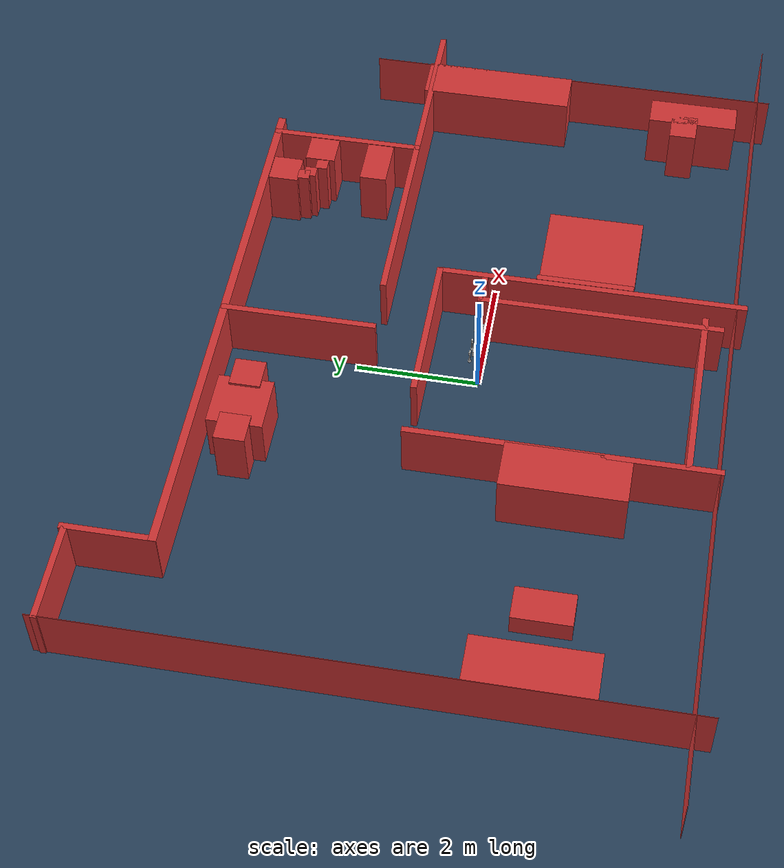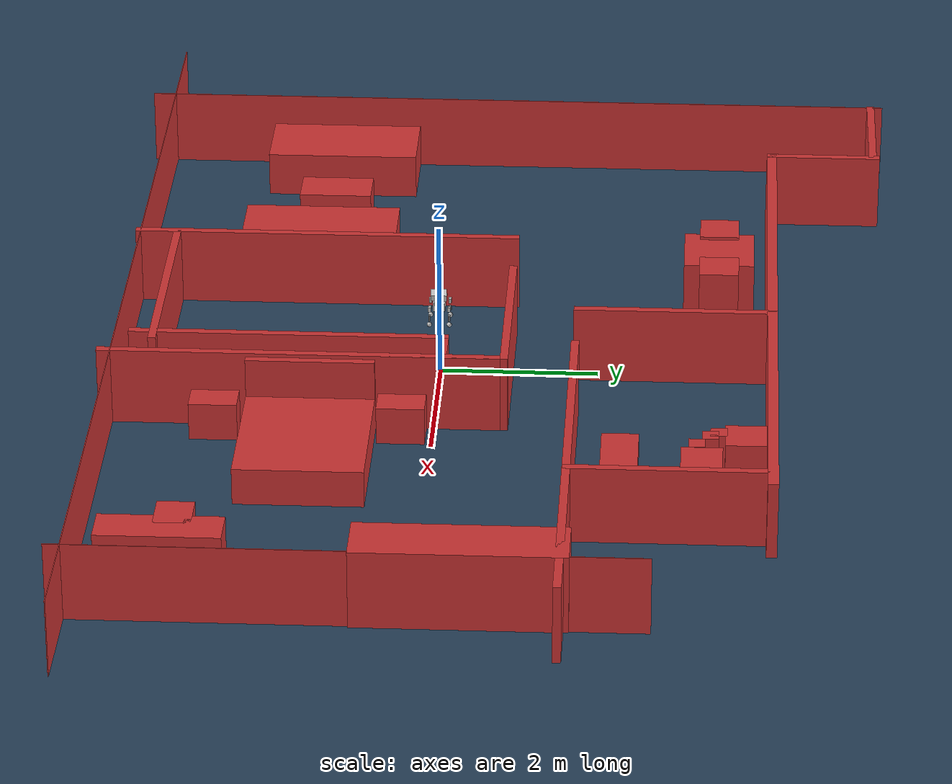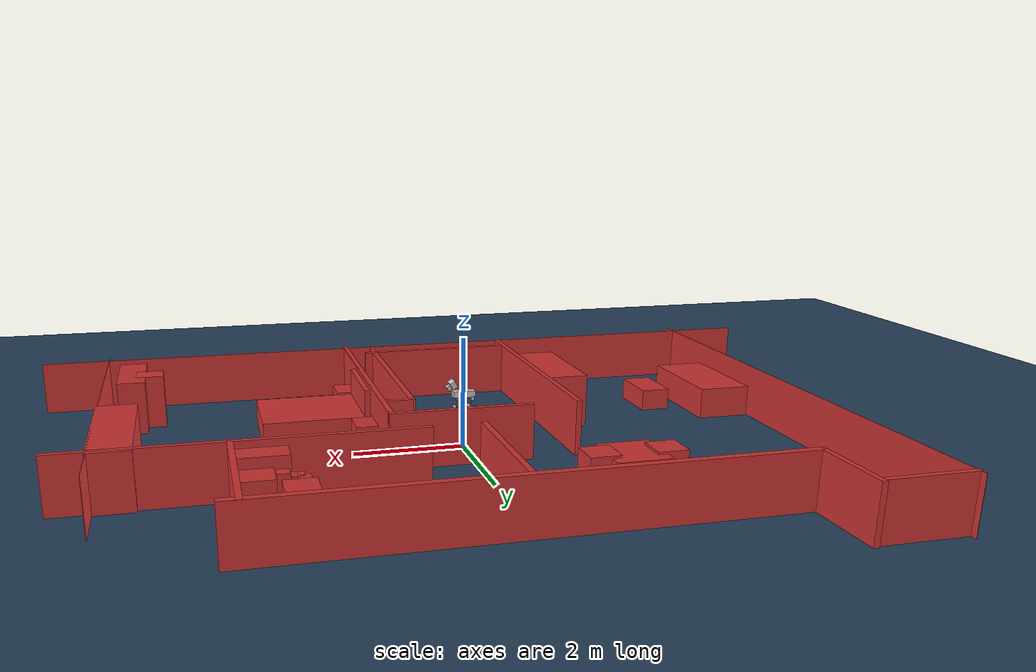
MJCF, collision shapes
<mujoco model="XXG scene">
  <include file="xxg.xml" />

  <statistic center="0 0 0.1" extent="0.8" />

  <visual>
    <headlight diffuse="0.6 0.6 0.6" ambient="0.3 0.3 0.3" specular="0 0 0" />
    <rgba haze="0.15 0.25 0.35 1" />
    <global azimuth="-130" elevation="-20" />
    <map znear="0.01" zfar="100"/>
  </visual>

  <asset>
    <texture type="skybox" builtin="gradient" rgb1="0.3 0.5 0.7" rgb2="0 0 0" width="512" height="3072" />
    <texture type="2d" name="groundplane" builtin="checker" mark="edge" rgb1="0.2 0.3 0.4" rgb2="0.1 0.2 0.3" markrgb="0.8 0.8 0.8" width="300" height="300" />
    <material name="groundplane" texture="groundplane" texuniform="true" texrepeat="5 5" reflectance="0.2" />
  <hfield name="perlin_hfield" size="1.0 0.75 0.2 0.2" file="../height_field.png" /><hfield name="image_hfield" size="1.0 1.0 0.02 0.1" file="../unitree_hfield.png" /></asset>

  <worldbody>
    <light pos="0 0 1.5" dir="0 0 -1" directional="true" />
    <geom name="floor" pos="0 0.0 0.01" size="0 0 0.05" type="plane" material="groundplane" />
<geom name="phs_Cube" type="box" size="0.005 5.0 0.5" pos="-6.03 0.7 0.5" quat="1.0 0.0 0.0 0.0" rgba="0.8 0.2 0.2 1"/>
<geom name="phs_Cube2" type="box" size="0.005 7.5 0.5" pos="0.07 -4.0 0.5" quat="0.707107 0.0 0.0 0.707107" rgba="0.8 0.2 0.2 1"/>
<geom name="phs_Cube3" type="box" size="0.005 3.5 0.5" pos="6.3 -0.7 0.5" quat="1.0 0.0 0.0 0.0" rgba="0.8 0.2 0.2 1"/>
<geom name="phs_Cube4" type="box" size="0.005 2.5 0.5" pos="1.53 -1.58 0.5" quat="1.0 0.0 0.0 0.0" rgba="0.8 0.2 0.2 1"/>
<geom name="phs_Cube5" type="box" size="0.05 3.0 0.5" pos="3.99 1.74 0.5" quat="0.707107 0.0 0.0 0.707107" rgba="0.8 0.2 0.2 1"/>
<geom name="phs_Cube6" type="box" size="0.05 1.275 0.5" pos="0.26 0.88 0.5" quat="0.707107 0.0 0.0 0.707107" rgba="0.8 0.2 0.2 1"/>
<geom name="phs_Cube7" type="box" size="0.05 2.5 0.5" pos="1.49 -1.67 0.5" quat="1.0 0.0 0.0 -0.0" rgba="0.8 0.2 0.2 1"/>
<geom name="phs_Cube8" type="box" size="0.05 2.0 0.5" pos="0.97 -1.83 0.5" quat="1.0 0.0 0.0 0.0" rgba="0.8 0.2 0.2 1"/>
<geom name="phs_Cube9" type="box" size="0.05 0.25 0.5" pos="1.21 0.12 0.5" quat="0.707107 0.0 0.0 -0.707107" rgba="0.8 0.2 0.2 1"/>
<geom name="phs_Cube10" type="box" size="0.05 1.5 0.5" pos="-0.33 -3.52 0.5" quat="0.707107 0.0 0.0 -0.707107" rgba="0.8 0.2 0.2 1"/>
<geom name="phs_Cube11" type="box" size="0.05 2.49375 0.5" pos="-1.84 -1.57 0.5" quat="1.0 0.0 0.0 0.0" rgba="0.8 0.2 0.2 1"/>
<geom name="phs_Cube12" type="box" size="0.065 4.5 0.5" pos="0.005 4.19 0.5" quat="0.707107 0.0 0.0 0.707107" rgba="0.8 0.2 0.2 1"/>
<geom name="phs_Cube13" type="box" size="0.05 1.275 0.5" pos="0.12 2.97 0.5" quat="1.0 0.0 0.0 -0.0" rgba="0.8 0.2 0.2 1"/>
<geom name="phs_Cube14" type="box" size="0.05 1.275 0.5" pos="4.19 2.97 0.5" quat="1.0 0.0 0.0 0.0" rgba="0.8 0.2 0.2 1"/>
<geom name="phs_Cube15" type="box" size="0.35 1.275 0.5" pos="5.98 0.58 0.5" quat="1.0 0.0 0.0 0.0" rgba="0.8 0.2 0.2 1"/>
<geom name="phs_Cube16" type="box" size="0.05 0.75 0.5" pos="-4.45 4.88 0.5" quat="1.0 0.0 0.0 0.0" rgba="0.8 0.2 0.2 1"/>
<geom name="phs_Cube17" type="box" size="0.05 0.8 0.5" pos="-5.26 5.54 0.5" quat="0.707107 0.0 0.0 0.707107" rgba="0.8 0.2 0.2 1"/>
<geom name="phs_Cube18" type="box" size="0.4 1.0 0.5" pos="-2.22 -1.68 0.5" quat="1.0 0.0 0.0 0.0" rgba="0.8 0.2 0.2 1"/>
<geom name="phs_Cube19" type="box" size="0.275 0.475 0.2" pos="-4.31 -1.65 0.27" quat="1.0 0.0 0.0 0.0" rgba="0.8 0.2 0.2 1"/>
<geom name="phs_Cube20" type="box" size="0.5 1.0 0.3" pos="-5.53 -1.63 0.28" quat="1.0 0.0 0.0 0.0" rgba="0.8 0.2 0.2 1"/>
<geom name="phs_Cube21" type="box" size="0.45 0.45 0.45" pos="-1.69 3.51 0.5" quat="1.0 0.0 0.0 0.0" rgba="0.8 0.2 0.2 1"/>
<geom name="phs_Cube22" type="box" size="0.25 0.25 0.5" pos="-2.23 3.51 0.49" quat="1.0 0.0 0.0 0.0" rgba="0.8 0.2 0.2 1"/>
<geom name="phs_Cube23" type="box" size="0.25 0.25 0.5" pos="-1.15 3.51 0.49" quat="1.0 0.0 0.0 0.0" rgba="0.8 0.2 0.2 1"/>
<geom name="phs_Cube24" type="box" size="0.25 0.25 0.5" pos="3.33 3.87 0.49" quat="1.0 0.0 0.0 0.0" rgba="0.8 0.2 0.2 1"/>
<geom name="phs_Cube25" type="box" size="0.25 0.25 0.5" pos="3.89 3.34 0.49" quat="1.0 0.0 0.0 0.0" rgba="0.8 0.2 0.2 1"/>
<geom name="phs_Cube26" type="box" size="0.1 0.1 0.5" pos="3.53 3.28 0.49" quat="1.0 0.0 0.0 0.0" rgba="0.8 0.2 0.2 1"/>
<geom name="phs_Cube27" type="box" size="0.1 0.1 0.5" pos="3.33 3.44 0.49" quat="1.0 0.0 0.0 0.0" rgba="0.8 0.2 0.2 1"/>
<geom name="phs_Cube28" type="box" size="0.1 0.1 0.5" pos="3.25 3.54 0.49" quat="1.0 0.0 0.0 0.0" rgba="0.8 0.2 0.2 1"/>
<geom name="phs_Cube29" type="box" size="0.4 0.225 0.5" pos="3.74 2.36 0.49" quat="1.0 0.0 0.0 0.0" rgba="0.8 0.2 0.2 1"/>
<geom name="phs_Cube30" type="box" size="1.0 0.8 0.25" pos="2.52 -1.51 0.22" quat="1.0 0.0 0.0 0.0" rgba="0.8 0.2 0.2 1"/>
<geom name="phs_Cube31" type="box" size="0.05 0.8 0.25" pos="1.62 -1.51 0.72" quat="1.0 0.0 0.0 0.0" rgba="0.8 0.2 0.2 1"/>
<geom name="phs_Cube32" type="box" size="0.25 0.3 0.25" pos="1.68 -0.38 0.23" quat="1.0 0.0 0.0 0.0" rgba="0.8 0.2 0.2 1"/>
<geom name="phs_Cube33" type="box" size="0.25 0.3 0.25" pos="1.68 -2.7 0.23" quat="1.0 0.0 0.0 0.0" rgba="0.8 0.2 0.2 1"/>
<geom name="phs_Cube34" type="box" size="0.25 0.225 0.5" pos="5.48 -2.77 0.49" quat="1.0 0.0 0.0 0.0" rgba="0.8 0.2 0.2 1"/>
<geom name="phs_Cube35" type="box" size="0.25 0.75 0.5" pos="5.81 -2.91 0.49" quat="1.0 0.0 0.0 0.0" rgba="0.8 0.2 0.2 1"/>
    </worldbody>
</mujoco>

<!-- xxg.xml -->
<mujoco model="DOG">
  <compiler angle="radian" meshdir="assets/"/>

  <asset>
    <mesh name="BASE_LINK" file="BASE_LINK.STL"/>
    <mesh name="FBL_ABAD_LINK" file="FBL_ABAD_LINK.STL"/>
    <mesh name="FBL_HIP_LINK" file="FBL_HIP_LINK.STL"/>
    <mesh name="FBL_KNEE_LINK" file="FBL_KNEE_LINK.STL"/>
    <mesh name="FBL_FOOT_LINK" file="FBL_FOOT_LINK.STL"/>
    <mesh name="FAR_ABAD_LINK" file="FAR_ABAD_LINK.STL"/>
    <mesh name="FAR_HIP_LINK" file="FAR_HIP_LINK.STL"/>
    <mesh name="FAR_KNEE_LINK" file="FAR_KNEE_LINK.STL"/>
    <mesh name="FAR_FOOT_LINK" file="FAR_FOOT_LINK.STL"/>
    <mesh name="RAR_ABAD_LINK" file="RAR_ABAD_LINK.STL"/>
    <mesh name="RAR_HIP_LINK" file="RAR_HIP_LINK.STL"/>
    <mesh name="RAR_KNEE_LINK" file="RAR_KNEE_LINK.STL"/>
    <mesh name="RAR_FOOT_LINK" file="RAR_FOOT_LINK.STL"/>
    <mesh name="RBL_ABAD_LINK" file="RBL_ABAD_LINK.STL"/>
    <mesh name="RBL_HIP_LINK" file="RBL_HIP_LINK.STL"/>
    <mesh name="RBL_KNEE_LINK" file="RBL_KNEE_LINK.STL"/>
    <mesh name="RBL_FOOT_LINK" file="RBL_FOOT_LINK.STL"/>
    <mesh name="HEAD1_LINK" file="HEAD1_LINK.STL"/>
    <mesh name="HEAD2_LINK" file="HEAD2_LINK.STL"/>
  </asset>

  <worldbody>
    <body name="BASE_LINK" pos="0 0 1.0">
      <inertial pos="1.8341473e-02 -1.9475667e-04 1.6646741e-02" quat="-0 0 0 1" mass="5.6608325" diaginertia="0.039340224 8.8059075e-02 7.6312096e-02"/>
      <freejoint />
      <site name="imu" pos="0.0 0 0.0" />
    <!-- add livox_imu -->
    <site name="livox_imu" pos="0.18 0.0 0.3" quat="1.0 0.0 0.0 0.0"/>
    <!-- add camera imu -->
    <site name="camera_imu" pos="0.18 0.0 0.3" quat="1.0 0.0 0.0 0.0"/>

    <geom type="mesh" contype="0" conaffinity="0" group="1" density="0" rgba="0.75294 0.75294 0.75294 1.0" mesh="BASE_LINK"/>
    <geom size="0.2 0.075 0.055" type="box" rgba="0.75294 0.75294 0.75294 0.0"/>
    <geom pos="0.1775 0 0.1164" quat="0.965249 0 0.26133 0" type="mesh" contype="0" conaffinity="0" group="1" density="0" rgba="0.75294 0.75294 0.75294 1.0" mesh="HEAD1_LINK"/>
    <geom pos="0.1775 0 0.1164" quat="0.965249 0 0.26133 0" type="mesh" contype="0" conaffinity="0" group="1" density="0" rgba="0.75294 0.75294 0.75294 1.0" mesh="HEAD2_LINK"/>
    <geom size="0.05 0.1 0.06" pos="0.204181 0 0.181884" quat="0.965249 0 0.26133 0" type="box" rgba="0.75294 0.75294 0.75294 0.0"/>
    <geom size="0.035 0.05 0.04" pos="0.27432 0 0.123528" quat="0.965249 0 0.26133 0" type="box" rgba="0.75294 0.75294 0.75294 0.0"/>
    <body name="FBL_ABAD_LINK" pos="0.1305 0.0377 0">
      <inertial pos="-0.0258732 0.00474653 0" quat="0.446156 0.446156 0.548585 0.548585" mass="0.29007" diaginertia="0.000234429 0.000228281 4.61129e-05"/>
      <joint name="FBL_ABAD_JOINT" pos="0 0 0" axis="1 0 0" range="-0.4887 0.4887" actuatorfrcrange="-20 20"/>
      <geom type="mesh" contype="0" conaffinity="0" group="1" density="0" rgba="0.75294 0.75294 0.75294 1.0" mesh="FBL_ABAD_LINK"/>
      <body name="FBL_HIP_LINK">
        <inertial pos="0 0.0475203 -0.0615104" quat="0.992663 0.120643 7.95638e-06 -0.00808508" mass="0.698577" diaginertia="0.00315469 0.00310141 0.000383698"/>
        <joint name="FBL_HIP_JOINT" pos="0 0 0" axis="0 1 0" range="-2.967 2.967" actuatorfrcrange="-20 20"/>
        <geom type="mesh" contype="0" conaffinity="0" group="1" density="0" rgba="0.75294 0.75294 0.75294 1.0" mesh="FBL_HIP_LINK"/>
        <geom size="0.025 0.015 0.03" pos="-0.01 0.085 -0.06" type="box" rgba="0.75294 0.75294 0.75294 1.0"/>
        <body name="FBL_KNEE_LINK" pos="0 0.08786 -0.1307">
          <inertial pos="0.00368489 0.0063771 -0.0635258" quat="0.608469 0.0177668 -0.0332576 0.792681" mass="0.288584" diaginertia="0.00161384 0.00159203 5.37708e-05"/>
          <joint name="FBL_KNEE_JOINT" pos="0 0 0" axis="0 1 0" range="-2.723 2.702" actuatorfrcrange="-20 20"/>
          <geom type="mesh" contype="0" conaffinity="0" group="1" density="0" rgba="0.49804 0.49804 0.49804 1.0" mesh="FBL_KNEE_LINK"/>
          <geom size="0.015 0.01 0.045" pos="0 0 -0.05" quat="0.994493 0 0.104807 0" type="box" rgba="0.49804 0.49804 0.49804 1.0"/>
          <geom pos="0 0 -0.1425" type="mesh" contype="0" conaffinity="0" group="1" density="0" rgba="0.75294 0.75294 0.75294 1.0" mesh="FBL_FOOT_LINK"/>
          <geom size="0.03" pos="0 0 -0.1425" quat="0.707388 0.706825 0 0" rgba="0.75294 0.75294 0.75294 1.0"/>
        </body>
      </body>
    </body>
    <body name="FAR_ABAD_LINK" pos="0.1305 -0.0377 0">
      <inertial pos="-0.0258732 -0.00474653 0" quat="0.548585 0.548585 0.446156 0.446156" mass="0.29007" diaginertia="0.000234429 0.000228281 4.61129e-05"/>
      <joint name="FAR_ABAD_JOINT" pos="0 0 0" axis="1 0 0" range="-0.4887 0.4887" actuatorfrcrange="-20 20"/>
      <geom type="mesh" contype="0" conaffinity="0" group="1" density="0" rgba="0.75294 0.75294 0.75294 1.0" mesh="FAR_ABAD_LINK"/>
      <body name="FAR_HIP_LINK">
        <inertial pos="0 -0.0475203 -0.0615104" quat="0.992663 -0.120643 7.95638e-06 0.00808508" mass="0.698577" diaginertia="0.00315469 0.00310141 0.000383698"/>
        <joint name="FAR_HIP_JOINT" pos="0 0 0" axis="0 1 0" range="-2.967 2.967" actuatorfrcrange="-20 20"/>
        <geom type="mesh" contype="0" conaffinity="0" group="1" density="0" rgba="0.75294 0.75294 0.75294 1.0" mesh="FAR_HIP_LINK"/>
        <geom size="0.025 0.015 0.03" pos="-0.01 -0.085 -0.06" type="box" rgba="0.75294 0.75294 0.75294 1.0"/>
        <body name="FAR_KNEE_LINK" pos="0 -0.08786 -0.1307">
          <inertial pos="0.00368489 -0.0063771 -0.0635258" quat="0.792681 -0.0332576 0.0177668 0.608469" mass="0.288584" diaginertia="0.00161384 0.00159203 5.37708e-05"/>
          <joint name="FAR_KNEE_JOINT" pos="0 0 0" axis="0 1 0" range="-2.723 2.702" actuatorfrcrange="-20 20"/>
          <geom type="mesh" contype="0" conaffinity="0" group="1" density="0" rgba="0.49804 0.49804 0.49804 1.0" mesh="FAR_KNEE_LINK"/>
          <geom size="0.015 0.01 0.045" pos="0 0 -0.05" quat="0.994493 0 0.104807 0" type="box" rgba="0.49804 0.49804 0.49804 1.0"/>
          <geom pos="0 0 -0.1425" type="mesh" contype="0" conaffinity="0" group="1" density="0" rgba="0.75294 0.75294 0.75294 1.0" mesh="FAR_FOOT_LINK"/>
          <geom size="0.03" pos="0 0 -0.1425" quat="0.707388 0.706825 0 0" rgba="0.75294 0.75294 0.75294 1.0"/>
        </body>
      </body>
    </body>
    <body name="RAR_ABAD_LINK" pos="-0.1305 -0.0377 0">
      <inertial pos="0.0258732 -0.00474653 0" quat="0.446156 0.446156 0.548585 0.548585" mass="0.29007" diaginertia="0.000234429 0.000228281 4.61129e-05"/>
      <joint name="RAR_ABAD_JOINT" pos="0 0 0" axis="1 0 0" range="-0.4887 0.4887" actuatorfrcrange="-20 20"/>
      <geom type="mesh" contype="0" conaffinity="0" group="1" density="0" rgba="0.75294 0.75294 0.75294 1.0" mesh="RAR_ABAD_LINK"/>
      <body name="RAR_HIP_LINK">
        <inertial pos="0 -0.0475203 -0.0615104" quat="0.992663 -0.120643 7.95638e-06 0.00808508" mass="0.698577" diaginertia="0.00315469 0.00310141 0.000383698"/>
        <joint name="RAR_HIP_JOINT" pos="0 0 0" axis="0 1 0" range="-2.967 2.967" actuatorfrcrange="-20 20"/>
        <geom type="mesh" contype="0" conaffinity="0" group="1" density="0" rgba="0.75294 0.75294 0.75294 1.0" mesh="RAR_HIP_LINK"/>
        <geom size="0.025 0.015 0.03" pos="0 -0.085 -0.06" type="box" rgba="0.75294 0.75294 0.75294 1.0"/>
        <body name="RAR_KNEE_LINK" pos="0 -0.08786 -0.1307">
          <inertial pos="0.00368489 -0.0063771 -0.0634925" quat="0.792566 -0.0333078 0.0177921 0.608615" mass="0.288584" diaginertia="0.0016124 0.00159058 5.37526e-05"/>
          <joint name="RAR_KNEE_JOINT" pos="0 0 0" axis="0 1 0" range="-2.723 2.702" actuatorfrcrange="-20 20"/>
          <geom type="mesh" contype="0" conaffinity="0" group="1" density="0" rgba="0.49804 0.49804 0.49804 1.0" mesh="RAR_KNEE_LINK"/>
          <geom size="0.015 0.01 0.045" pos="-0.01 0 -0.04" quat="0.930508 0 0.366273 0" type="box" rgba="0.49804 0.49804 0.49804 1.0"/>
          <geom pos="0 0 -0.1357" quat="1 0 0 0" type="mesh" contype="0" conaffinity="0" group="1" density="0" rgba="0.75294 0.75294 0.75294 1.0" mesh="RAR_FOOT_LINK"/>
          <geom size="0.03" pos="0 0 -0.1357" quat="0.707388 0.706825 0 0" rgba="0.75294 0.75294 0.75294 1.0"/>
        </body>
      </body>
    </body>
    <body name="RBL_ABAD_LINK" pos="-0.1305 0.0377 0">
      <inertial pos="0.0258732 0.00474653 0" quat="0.548585 0.548585 0.446156 0.446156" mass="0.29007" diaginertia="0.000234429 0.000228281 4.61129e-05"/>
      <joint name="RBL_ABAD_JOINT" pos="0 0 0" axis="1 0 0" range="-0.4887 0.4887" actuatorfrcrange="-20 20"/>
      <geom type="mesh" contype="0" conaffinity="0" group="1" density="0" rgba="0.75294 0.75294 0.75294 1.0" mesh="RBL_ABAD_LINK"/>
      <body name="RBL_HIP_LINK">
        <inertial pos="0 0.0475203 -0.0615104" quat="0.992663 0.120643 7.95638e-06 -0.00808508" mass="0.698577" diaginertia="0.00315469 0.00310141 0.000383698"/>
        <joint name="RBL_HIP_JOINT" pos="0 0 0" axis="0 1 0" range="-2.967 2.967" actuatorfrcrange="-20 20"/>
        <geom type="mesh" contype="0" conaffinity="0" group="1" density="0" rgba="0.75294 0.75294 0.75294 1.0" mesh="RBL_HIP_LINK"/>
        <geom size="0.025 0.015 0.03" pos="0 0.085 -0.06" type="box" rgba="0.75294 0.75294 0.75294 1.0"/>
        <body name="RBL_KNEE_LINK" pos="0 0.08786 -0.1307">
          <inertial pos="0.00368489 0.0063771 -0.0634925" quat="0.608615 0.0177921 -0.0333078 0.792566" mass="0.288584" diaginertia="0.0016124 0.00159058 5.37526e-05"/>
          <joint name="RBL_KNEE_JOINT" pos="0 0 0" axis="0 1 0" range="-2.723 2.702" actuatorfrcrange="-20 20"/>
          <geom type="mesh" contype="0" conaffinity="0" group="1" density="0" rgba="0.49804 0.49804 0.49804 1.0" mesh="RBL_KNEE_LINK"/>
          <geom size="0.015 0.01 0.045" pos="-0.01 0 -0.04" quat="0.930508 0 0.366273 0" type="box" rgba="0.49804 0.49804 0.49804 1.0"/>
          <geom pos="0 0 -0.1357" quat="1 0 0 0" type="mesh" contype="0" conaffinity="0" group="1" density="0" rgba="0.75294 0.75294 0.75294 1.0" mesh="RBL_FOOT_LINK"/>
          <geom size="0.03" pos="0 0 -0.1357" quat="0.707388 0.706825 0 0" rgba="0.75294 0.75294 0.75294 1.0"/>
        </body>
      </body>
    </body>
  </body>
  </worldbody>
    <actuator>
        <motor name="FR_ABAD_LINK" joint="FAR_ABAD_JOINT" />
        <motor name="FR_HIP_LINK" joint="FAR_HIP_JOINT" />
        <motor name="FR_KNEE_LINK" joint="FAR_KNEE_JOINT" />
        <motor name="FL_ABAD_LINK" joint="FBL_ABAD_JOINT" />
        <motor name="FL_HIP_LINK" joint="FBL_HIP_JOINT" />
        <motor name="FL_KNEE_LINK" joint="FBL_KNEE_JOINT" />
        <motor name="RR_ABAD_LINK" joint="RAR_ABAD_JOINT" />
        <motor name="RR_HIP_LINK" joint="RAR_HIP_JOINT" />
        <motor name="RR_KNEE_LINK" joint="RAR_KNEE_JOINT" />
        <motor name="RL_ABAD_LINK" joint="RBL_ABAD_JOINT" />
        <motor name="RL_HIP_LINK" joint="RBL_HIP_JOINT" />
        <motor name="RL_KNEE_LINK" joint="RBL_KNEE_JOINT" />
    </actuator>

    <sensor>
        <jointpos name="FR_hip_pos" joint="FAR_ABAD_JOINT" />
        <jointpos name="FR_thigh_pos" joint="FAR_HIP_JOINT" />
        <jointpos name="FR_calf_pos" joint="FAR_KNEE_JOINT" />
        <jointpos name="FL_hip_pos" joint="FBL_ABAD_JOINT" />
        <jointpos name="FL_thigh_pos" joint="FBL_HIP_JOINT" />
        <jointpos name="FL_calf_pos" joint="FBL_KNEE_JOINT" />
        <jointpos name="RR_hip_pos" joint="RAR_ABAD_JOINT" />
        <jointpos name="RR_thigh_pos" joint="RAR_HIP_JOINT" />
        <jointpos name="RR_calf_pos" joint="RAR_KNEE_JOINT" />
        <jointpos name="RL_hip_pos" joint="RBL_ABAD_JOINT" />
        <jointpos name="RL_thigh_pos" joint="RBL_HIP_JOINT" />
        <jointpos name="RL_calf_pos" joint="RBL_KNEE_JOINT" />

        <jointvel name="FR_hip_vel" joint="FAR_ABAD_JOINT" />
        <jointvel name="FR_thigh_vel" joint="FAR_HIP_JOINT" />
        <jointvel name="FR_calf_vel" joint="FAR_KNEE_JOINT" />
        <jointvel name="FL_hip_vel" joint="FBL_ABAD_JOINT" />
        <jointvel name="FL_thigh_vel" joint="FBL_HIP_JOINT" />
        <jointvel name="FL_calf_vel" joint="FBL_KNEE_JOINT" />
        <jointvel name="RR_hip_vel" joint="RAR_ABAD_JOINT" />
        <jointvel name="RR_thigh_vel" joint="RAR_HIP_JOINT" />
        <jointvel name="RR_calf_vel" joint="RAR_KNEE_JOINT" />
        <jointvel name="RL_hip_vel" joint="RBL_ABAD_JOINT" />
        <jointvel name="RL_thigh_vel" joint="RBL_HIP_JOINT" />
        <jointvel name="RL_calf_vel" joint="RBL_KNEE_JOINT" />

        <jointactuatorfrc name="FR_hip_torque" joint="FAR_ABAD_JOINT" noise="0.01" />
        <jointactuatorfrc name="FR_thigh_torque" joint="FAR_HIP_JOINT" noise="0.01" />
        <jointactuatorfrc name="FR_calf_torque" joint="FAR_KNEE_JOINT" noise="0.01" />
        <jointactuatorfrc name="FL_hip_torque" joint="FBL_ABAD_JOINT" noise="0.01" />
        <jointactuatorfrc name="FL_thigh_torque" joint="FBL_HIP_JOINT" noise="0.01" />
        <jointactuatorfrc name="FL_calf_torque" joint="FBL_KNEE_JOINT" noise="0.01" />
        <jointactuatorfrc name="RR_hip_torque" joint="RAR_ABAD_JOINT" noise="0.01" />
        <jointactuatorfrc name="RR_thigh_torque" joint="RAR_HIP_JOINT" noise="0.01" />
        <jointactuatorfrc name="RR_calf_torque" joint="RAR_KNEE_JOINT" noise="0.01" />
        <jointactuatorfrc name="RL_hip_torque" joint="RBL_ABAD_JOINT" noise="0.01" />
        <jointactuatorfrc name="RL_thigh_torque" joint="RBL_HIP_JOINT" noise="0.01" />
        <jointactuatorfrc name="RL_calf_torque" joint="RBL_KNEE_JOINT" noise="0.01" />

        <framequat name="imu_quat" objtype="site" objname="imu" />
        <gyro name="imu_gyro" site="imu" />
        <accelerometer name="imu_acc" site="imu" />

        <framepos name="frame_pos" objtype="site" objname="imu" />
        <framelinvel name="frame_vel" objtype="site" objname="imu" />

        <!-- add livox_imu -->
        <framequat name="livox_imu_quat" objtype="site" objname="livox_imu" />
        <gyro name="livox_imu_gyro" site="livox_imu" />
        <accelerometer name="livox_imu_acc" site="livox_imu" />

        <framepos name="livox_imu_frame_pos" objtype="site" objname="livox_imu" />
        <framelinvel name="livox_imu_frame_vel" objtype="site" objname="livox_imu" />

        <!-- add camera imu -->
        <framequat name="camera_imu_quat" objtype="site" objname="camera_imu" />
        <gyro name="camera_imu_gyro" site="camera_imu" />
        <accelerometer name="camera_imu_acc" site="camera_imu" />

        <framepos name="camera_imu_frame_pos" objtype="site" objname="camera_imu" />
        <framelinvel name="camera_imu_frame_vel" objtype="site" objname="camera_imu" />
    </sensor>

</mujoco>
